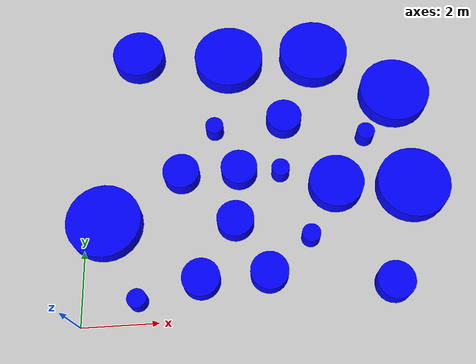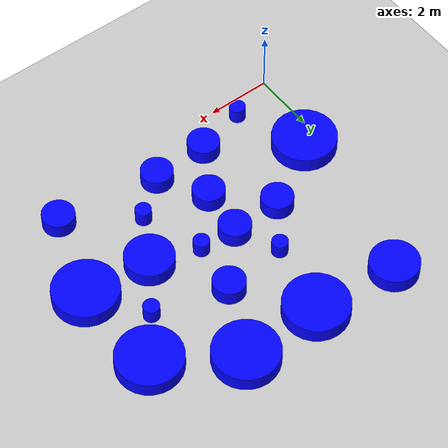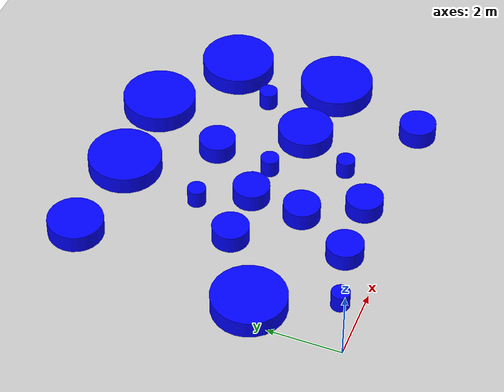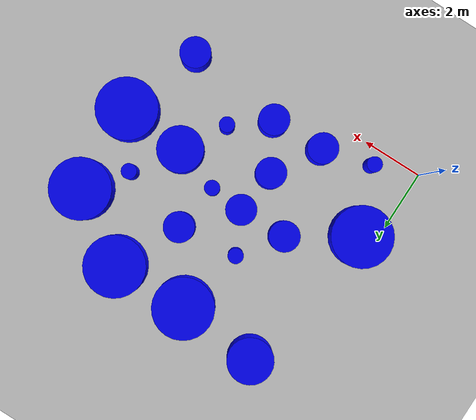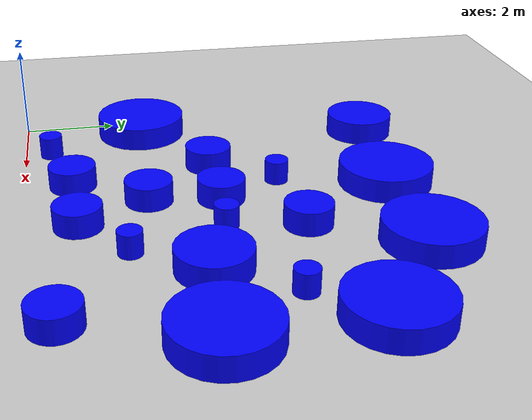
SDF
<sdf version="1.6">
 <world name="default">
  <light name="sun" type="directional">
   <pose>0 0 10 0 -0 0</pose>
   <diffuse>0.8 0.8 0.8 1</diffuse>
   <specular>0.2 0.2 0.2 1</specular>
   <attenuation>
    <range>1000</range>
    <constant>0.9</constant>
    <linear>0.01</linear>
    <quadratic>0.001</quadratic>
   </attenuation>
   <direction>-0.5 0.1 -0.9</direction>
  </light>
  <model name="ground_plane">
   <static>1</static>
   <link name="link">
    <collision name="collision">
     <geometry><plane><normal>0 0 1</normal><size>100 100</size></plane></geometry>
     <surface>
      <contact><collide_bitmask>65535</collide_bitmask></contact>
      <friction><ode><mu>100</mu><mu2>50</mu2></ode></friction>
     </surface>
    </collision>
    <visual name="visual">
     <cast_shadows>0</cast_shadows>
     <geometry><plane><normal>0 0 1</normal><size>100 100</size></plane></geometry>
     <material>
      <script><uri>file://media/materials/scripts/gazebo.material</uri><name>Gazebo/Grey</name></script>
     </material>
    </visual>
   </link>
  </model>
  <gravity>0 0 -9.8</gravity>
  <magnetic_field>6e-06 2.3e-05 -4.2e-05</magnetic_field>
  <atmosphere type="adiabatic"/>
  <physics name="default_physics" default="0" type="ode">
   <max_step_size>0.001</max_step_size>
   <real_time_factor>1</real_time_factor>
   <real_time_update_rate>1000</real_time_update_rate>
  </physics>
  <scene><ambient>0.4 0.4 0.4 1</ambient><background>0.7 0.7 0.7 1</background><shadows>1</shadows></scene>
  <audio><device>default</device></audio>
  <spherical_coordinates>
   <surface_model>EARTH_WGS84</surface_model>
   <latitude_deg>0</latitude_deg>
   <longitude_deg>0</longitude_deg>
   <elevation>0</elevation>
   <heading_deg>0</heading_deg>
  </spherical_coordinates>
  <model name="kwn_obs100">
   <link name="link">
    <inertial>
     <mass>1</mass>
     <inertia><ixx>0.145833</ixx><ixy>0</ixy><ixz>0</ixz><iyy>0.145833</iyy><iyz>0</iyz><izz>0.125</izz></inertia>
    </inertial>
    <visual name="visual">
     <geometry><cylinder><radius>1</radius><length>0.5</length></cylinder></geometry>
     <material>
      <script><name>Gazebo/Grey</name><uri>file://media/materials/scripts/gazebo.material</uri></script>
      <shader type="vertex"><normal_map>__default__</normal_map></shader>
      <ambient>0 0 1 1</ambient>
      <diffuse>0.7 0.7 0.7 1</diffuse>
      <specular>0.01 0.01 0.01 1</specular>
      <emissive>0 0 0 1</emissive>
     </material>
     <pose>0 0 0.25 0 -0 0</pose>
    </visual>
    <collision name="collision">
     <pose>0 0 0.25 0 -0 0</pose>
     <geometry><cylinder><radius>1</radius><length>0.5</length></cylinder></geometry>
     <surface>
      <friction>
       <ode><mu>1</mu><mu2>1</mu2><fdir1>0 0 0</fdir1><slip1>0</slip1><slip2>0</slip2></ode>
       <torsional>
        <coefficient>1</coefficient>
        <patch_radius>0</patch_radius>
        <surface_radius>0</surface_radius>
        <use_patch_radius>1</use_patch_radius>
        <ode><slip>0</slip></ode>
       </torsional>
      </friction>
      <bounce><restitution_coefficient>0</restitution_coefficient><threshold>1e+06</threshold></bounce>
      <contact>
       <collide_without_contact>0</collide_without_contact>
       <collide_without_contact_bitmask>1</collide_without_contact_bitmask>
       <collide_bitmask>1</collide_bitmask>
       <ode>
        <soft_cfm>0</soft_cfm>
        <soft_erp>0.2</soft_erp>
        <kp>1e+13</kp>
        <kd>1</kd>
        <max_vel>0.01</max_vel>
        <min_depth>0</min_depth>
       </ode>
       <bullet>
        <split_impulse>1</split_impulse>
        <split_impulse_penetration_threshold>-0.01</split_impulse_penetration_threshold>
        <soft_cfm>0</soft_cfm>
        <soft_erp>0.2</soft_erp>
        <kp>1e+13</kp>
        <kd>1</kd>
       </bullet>
      </contact>
     </surface>
    </collision>
   </link>
   <static>1</static>
   <pose>0.56066 2.68798 0 0 -0 0</pose>
  </model>
  <model name="kwn_obs50">
   <link name="link">
    <inertial>
     <mass>1</mass>
     <inertia><ixx>0.145833</ixx><ixy>0</ixy><ixz>0</ixz><iyy>0.145833</iyy><iyz>0</iyz><izz>0.125</izz></inertia>
    </inertial>
    <visual name="visual">
     <geometry><cylinder><radius>0.5</radius><length>0.5</length></cylinder></geometry>
     <material>
      <script><name>Gazebo/Grey</name><uri>file://media/materials/scripts/gazebo.material</uri></script>
      <shader type="vertex"><normal_map>__default__</normal_map></shader>
      <ambient>0 0 1 1</ambient>
      <diffuse>0.7 0.7 0.7 1</diffuse>
      <specular>0.01 0.01 0.01 1</specular>
      <emissive>0 0 0 1</emissive>
     </material>
     <pose>0 0 0.25 0 -0 0</pose>
    </visual>
    <collision name="collision">
     <pose>0 0 0.25 0 -0 0</pose>
     <geometry><cylinder><radius>0.5</radius><length>0.5</length></cylinder></geometry>
     <surface>
      <friction>
       <ode><mu>1</mu><mu2>1</mu2><fdir1>0 0 0</fdir1><slip1>0</slip1><slip2>0</slip2></ode>
       <torsional>
        <coefficient>1</coefficient>
        <patch_radius>0</patch_radius>
        <surface_radius>0</surface_radius>
        <use_patch_radius>1</use_patch_radius>
        <ode><slip>0</slip></ode>
       </torsional>
      </friction>
      <bounce><restitution_coefficient>0</restitution_coefficient><threshold>1e+06</threshold></bounce>
      <contact>
       <collide_without_contact>0</collide_without_contact>
       <collide_without_contact_bitmask>1</collide_without_contact_bitmask>
       <collide_bitmask>1</collide_bitmask>
       <ode>
        <soft_cfm>0</soft_cfm>
        <soft_erp>0.2</soft_erp>
        <kp>1e+13</kp>
        <kd>1</kd>
        <max_vel>0.01</max_vel>
        <min_depth>0</min_depth>
       </ode>
       <bullet>
        <split_impulse>1</split_impulse>
        <split_impulse_penetration_threshold>-0.01</split_impulse_penetration_threshold>
        <soft_cfm>0</soft_cfm>
        <soft_erp>0.2</soft_erp>
        <kp>1e+13</kp>
        <kd>1</kd>
       </bullet>
      </contact>
     </surface>
    </collision>
   </link>
   <static>1</static>
   <pose>3.0979 1.02126 0 0 -0 0</pose>
  </model>
  <model name="kwn_obs50_0">
   <link name="link">
    <inertial>
     <mass>1</mass>
     <inertia><ixx>0.145833</ixx><ixy>0</ixy><ixz>0</ixz><iyy>0.145833</iyy><iyz>0</iyz><izz>0.125</izz></inertia>
    </inertial>
    <visual name="visual">
     <geometry><cylinder><radius>0.5</radius><length>0.5</length></cylinder></geometry>
     <material>
      <script><name>Gazebo/Grey</name><uri>file://media/materials/scripts/gazebo.material</uri></script>
      <shader type="vertex"><normal_map>__default__</normal_map></shader>
      <ambient>0 0 1 1</ambient>
      <diffuse>0.7 0.7 0.7 1</diffuse>
      <specular>0.01 0.01 0.01 1</specular>
      <emissive>0 0 0 1</emissive>
     </material>
     <pose>0 0 0.25 0 -0 0</pose>
    </visual>
    <collision name="collision">
     <pose>0 0 0.25 0 -0 0</pose>
     <geometry><cylinder><radius>0.5</radius><length>0.5</length></cylinder></geometry>
     <surface>
      <friction>
       <ode><mu>1</mu><mu2>1</mu2><fdir1>0 0 0</fdir1><slip1>0</slip1><slip2>0</slip2></ode>
       <torsional>
        <coefficient>1</coefficient>
        <patch_radius>0</patch_radius>
        <surface_radius>0</surface_radius>
        <use_patch_radius>1</use_patch_radius>
        <ode><slip>0</slip></ode>
       </torsional>
      </friction>
      <bounce><restitution_coefficient>0</restitution_coefficient><threshold>1e+06</threshold></bounce>
      <contact>
       <collide_without_contact>0</collide_without_contact>
       <collide_without_contact_bitmask>1</collide_without_contact_bitmask>
       <collide_bitmask>1</collide_bitmask>
       <ode>
        <soft_cfm>0</soft_cfm>
        <soft_erp>0.2</soft_erp>
        <kp>1e+13</kp>
        <kd>1</kd>
        <max_vel>0.01</max_vel>
        <min_depth>0</min_depth>
       </ode>
       <bullet>
        <split_impulse>1</split_impulse>
        <split_impulse_penetration_threshold>-0.01</split_impulse_penetration_threshold>
        <soft_cfm>0</soft_cfm>
        <soft_erp>0.2</soft_erp>
        <kp>1e+13</kp>
        <kd>1</kd>
       </bullet>
      </contact>
     </surface>
    </collision>
   </link>
   <static>1</static>
   <pose>2.62373 3.99694 0 0 -0 0</pose>
  </model>
  <model name="kwn_obs25">
   <link name="link">
    <inertial>
     <mass>1</mass>
     <inertia><ixx>0.145833</ixx><ixy>0</ixy><ixz>0</ixz><iyy>0.145833</iyy><iyz>0</iyz><izz>0.125</izz></inertia>
    </inertial>
    <visual name="visual">
     <geometry><cylinder><radius>0.25</radius><length>0.5</length></cylinder></geometry>
     <material>
      <script><name>Gazebo/Grey</name><uri>file://media/materials/scripts/gazebo.material</uri></script>
      <shader type="vertex"><normal_map>__default__</normal_map></shader>
      <ambient>0 0 1 1</ambient>
      <diffuse>0.7 0.7 0.7 1</diffuse>
      <specular>0.01 0.01 0.01 1</specular>
      <emissive>0 0 0 1</emissive>
     </material>
     <pose>0 0 0.25 0 -0 0</pose>
    </visual>
    <collision name="collision">
     <pose>0 0 0.25 0 -0 0</pose>
     <geometry><cylinder><radius>0.25</radius><length>0.5</length></cylinder></geometry>
     <surface>
      <friction>
       <ode><mu>1</mu><mu2>1</mu2><fdir1>0 0 0</fdir1><slip1>0</slip1><slip2>0</slip2></ode>
       <torsional>
        <coefficient>1</coefficient>
        <patch_radius>0</patch_radius>
        <surface_radius>0</surface_radius>
        <use_patch_radius>1</use_patch_radius>
        <ode><slip>0</slip></ode>
       </torsional>
      </friction>
      <bounce><restitution_coefficient>0</restitution_coefficient><threshold>1e+06</threshold></bounce>
      <contact>
       <collide_without_contact>0</collide_without_contact>
       <collide_without_contact_bitmask>1</collide_without_contact_bitmask>
       <collide_bitmask>1</collide_bitmask>
       <ode>
        <soft_cfm>0</soft_cfm>
        <soft_erp>0.2</soft_erp>
        <kp>1e+13</kp>
        <kd>1</kd>
        <max_vel>0.01</max_vel>
        <min_depth>0</min_depth>
       </ode>
       <bullet>
        <split_impulse>1</split_impulse>
        <split_impulse_penetration_threshold>-0.01</split_impulse_penetration_threshold>
        <soft_cfm>0</soft_cfm>
        <soft_erp>0.2</soft_erp>
        <kp>1e+13</kp>
        <kd>1</kd>
       </bullet>
      </contact>
     </surface>
    </collision>
   </link>
   <static>1</static>
   <pose>1.47036 0.57288 0 0 -0 0</pose>
  </model>
  <model name="kwn_obs75">
   <link name="link">
    <inertial>
     <mass>1</mass>
     <inertia><ixx>0.145833</ixx><ixy>0</ixy><ixz>0</ixz><iyy>0.145833</iyy><iyz>0</iyz><izz>0.125</izz></inertia>
    </inertial>
    <visual name="visual">
     <geometry><cylinder><radius>0.75</radius><length>0.5</length></cylinder></geometry>
     <material>
      <script><name>Gazebo/Grey</name><uri>file://media/materials/scripts/gazebo.material</uri></script>
      <shader type="vertex"><normal_map>__default__</normal_map></shader>
      <ambient>0 0 1 1</ambient>
      <diffuse>0.7 0.7 0.7 1</diffuse>
      <specular>0.01 0.01 0.01 1</specular>
      <emissive>0 0 0 1</emissive>
     </material>
     <pose>0 0 0.25 0 -0 0</pose>
    </visual>
    <collision name="collision">
     <pose>0 0 0.25 0 -0 0</pose>
     <geometry><cylinder><radius>0.75</radius><length>0.5</length></cylinder></geometry>
     <surface>
      <friction>
       <ode><mu>1</mu><mu2>1</mu2><fdir1>0 0 0</fdir1><slip1>0</slip1><slip2>0</slip2></ode>
       <torsional>
        <coefficient>1</coefficient>
        <patch_radius>0</patch_radius>
        <surface_radius>0</surface_radius>
        <use_patch_radius>1</use_patch_radius>
        <ode><slip>0</slip></ode>
       </torsional>
      </friction>
      <bounce><restitution_coefficient>0</restitution_coefficient><threshold>1e+06</threshold></bounce>
      <contact>
       <collide_without_contact>0</collide_without_contact>
       <collide_without_contact_bitmask>1</collide_without_contact_bitmask>
       <collide_bitmask>1</collide_bitmask>
       <ode>
        <soft_cfm>0</soft_cfm>
        <soft_erp>0.2</soft_erp>
        <kp>1e+13</kp>
        <kd>1</kd>
        <max_vel>0.01</max_vel>
        <min_depth>0</min_depth>
       </ode>
       <bullet>
        <split_impulse>1</split_impulse>
        <split_impulse_penetration_threshold>-0.01</split_impulse_penetration_threshold>
        <soft_cfm>0</soft_cfm>
        <soft_erp>0.2</soft_erp>
        <kp>1e+13</kp>
        <kd>1</kd>
       </bullet>
      </contact>
     </surface>
    </collision>
   </link>
   <static>1</static>
   <pose>1.41249 7.85595 0 0 -0 0</pose>
  </model>
  <model name="kwn_obs50_1">
   <link name="link">
    <inertial>
     <mass>1</mass>
     <inertia><ixx>0.145833</ixx><ixy>0</ixy><ixz>0</ixz><iyy>0.145833</iyy><iyz>0</iyz><izz>0.125</izz></inertia>
    </inertial>
    <visual name="visual">
     <geometry><cylinder><radius>0.5</radius><length>0.5</length></cylinder></geometry>
     <material>
      <script><name>Gazebo/Grey</name><uri>file://media/materials/scripts/gazebo.material</uri></script>
      <shader type="vertex"><normal_map>__default__</normal_map></shader>
      <ambient>0 0 1 1</ambient>
      <diffuse>0.7 0.7 0.7 1</diffuse>
      <specular>0.01 0.01 0.01 1</specular>
      <emissive>0 0 0 1</emissive>
     </material>
     <pose>0 0 0.25 0 -0 0</pose>
    </visual>
    <collision name="collision">
     <pose>0 0 0.25 0 -0 0</pose>
     <geometry><cylinder><radius>0.5</radius><length>0.5</length></cylinder></geometry>
     <surface>
      <friction>
       <ode><mu>1</mu><mu2>1</mu2><fdir1>0 0 0</fdir1><slip1>0</slip1><slip2>0</slip2></ode>
       <torsional>
        <coefficient>1</coefficient>
        <patch_radius>0</patch_radius>
        <surface_radius>0</surface_radius>
        <use_patch_radius>1</use_patch_radius>
        <ode><slip>0</slip></ode>
       </torsional>
      </friction>
      <bounce><restitution_coefficient>0</restitution_coefficient><threshold>1e+06</threshold></bounce>
      <contact>
       <collide_without_contact>0</collide_without_contact>
       <collide_without_contact_bitmask>1</collide_without_contact_bitmask>
       <collide_bitmask>1</collide_bitmask>
       <ode>
        <soft_cfm>0</soft_cfm>
        <soft_erp>0.2</soft_erp>
        <kp>1e+13</kp>
        <kd>1</kd>
        <max_vel>0.01</max_vel>
        <min_depth>0</min_depth>
       </ode>
       <bullet>
        <split_impulse>1</split_impulse>
        <split_impulse_penetration_threshold>-0.01</split_impulse_penetration_threshold>
        <soft_cfm>0</soft_cfm>
        <soft_erp>0.2</soft_erp>
        <kp>1e+13</kp>
        <kd>1</kd>
       </bullet>
      </contact>
     </surface>
    </collision>
   </link>
   <static>1</static>
   <pose>4.04913 2.55073 0 0 -0 0</pose>
  </model>
  <model name="kwn_obs25_0">
   <link name="link">
    <inertial>
     <mass>1</mass>
     <inertia><ixx>0.145833</ixx><ixy>0</ixy><ixz>0</ixz><iyy>0.145833</iyy><iyz>0</iyz><izz>0.125</izz></inertia>
    </inertial>
    <visual name="visual">
     <geometry><cylinder><radius>0.25</radius><length>0.5</length></cylinder></geometry>
     <material>
      <script><name>Gazebo/Grey</name><uri>file://media/materials/scripts/gazebo.material</uri></script>
      <shader type="vertex"><normal_map>__default__</normal_map></shader>
      <ambient>0 0 1 1</ambient>
      <diffuse>0.7 0.7 0.7 1</diffuse>
      <specular>0.01 0.01 0.01 1</specular>
      <emissive>0 0 0 1</emissive>
     </material>
     <pose>0 0 0.25 0 -0 0</pose>
    </visual>
    <collision name="collision">
     <pose>0 0 0.25 0 -0 0</pose>
     <geometry><cylinder><radius>0.25</radius><length>0.5</length></cylinder></geometry>
     <surface>
      <friction>
       <ode><mu>1</mu><mu2>1</mu2><fdir1>0 0 0</fdir1><slip1>0</slip1><slip2>0</slip2></ode>
       <torsional>
        <coefficient>1</coefficient>
        <patch_radius>0</patch_radius>
        <surface_radius>0</surface_radius>
        <use_patch_radius>1</use_patch_radius>
        <ode><slip>0</slip></ode>
       </torsional>
      </friction>
      <bounce><restitution_coefficient>0</restitution_coefficient><threshold>1e+06</threshold></bounce>
      <contact>
       <collide_without_contact>0</collide_without_contact>
       <collide_without_contact_bitmask>1</collide_without_contact_bitmask>
       <collide_bitmask>1</collide_bitmask>
       <ode>
        <soft_cfm>0</soft_cfm>
        <soft_erp>0.2</soft_erp>
        <kp>1e+13</kp>
        <kd>1</kd>
        <max_vel>0.01</max_vel>
        <min_depth>0</min_depth>
       </ode>
       <bullet>
        <split_impulse>1</split_impulse>
        <split_impulse_penetration_threshold>-0.01</split_impulse_penetration_threshold>
        <soft_cfm>0</soft_cfm>
        <soft_erp>0.2</soft_erp>
        <kp>1e+13</kp>
        <kd>1</kd>
       </bullet>
      </contact>
     </surface>
    </collision>
   </link>
   <static>1</static>
   <pose>3.58 5.33523 0 0 -0 0</pose>
  </model>
  <model name="kwn_obs50_2">
   <link name="link">
    <inertial>
     <mass>1</mass>
     <inertia><ixx>0.145833</ixx><ixy>0</ixy><ixz>0</ixz><iyy>0.145833</iyy><iyz>0</iyz><izz>0.125</izz></inertia>
    </inertial>
    <visual name="visual">
     <geometry><cylinder><radius>0.5</radius><length>0.5</length></cylinder></geometry>
     <material>
      <script><name>Gazebo/Grey</name><uri>file://media/materials/scripts/gazebo.material</uri></script>
      <shader type="vertex"><normal_map>__default__</normal_map></shader>
      <ambient>0 0 1 1</ambient>
      <diffuse>0.7 0.7 0.7 1</diffuse>
      <specular>0.01 0.01 0.01 1</specular>
      <emissive>0 0 0 1</emissive>
     </material>
     <pose>0 0 0.25 0 -0 0</pose>
    </visual>
    <collision name="collision">
     <pose>0 0 0.25 0 -0 0</pose>
     <geometry><cylinder><radius>0.5</radius><length>0.5</length></cylinder></geometry>
     <surface>
      <friction>
       <ode><mu>1</mu><mu2>1</mu2><fdir1>0 0 0</fdir1><slip1>0</slip1><slip2>0</slip2></ode>
       <torsional>
        <coefficient>1</coefficient>
        <patch_radius>0</patch_radius>
        <surface_radius>0</surface_radius>
        <use_patch_radius>1</use_patch_radius>
        <ode><slip>0</slip></ode>
       </torsional>
      </friction>
      <bounce><restitution_coefficient>0</restitution_coefficient><threshold>1e+06</threshold></bounce>
      <contact>
       <collide_without_contact>0</collide_without_contact>
       <collide_without_contact_bitmask>1</collide_without_contact_bitmask>
       <collide_bitmask>1</collide_bitmask>
       <ode>
        <soft_cfm>0</soft_cfm>
        <soft_erp>0.2</soft_erp>
        <kp>1e+13</kp>
        <kd>1</kd>
        <max_vel>0.01</max_vel>
        <min_depth>0</min_depth>
       </ode>
       <bullet>
        <split_impulse>1</split_impulse>
        <split_impulse_penetration_threshold>-0.01</split_impulse_penetration_threshold>
        <soft_cfm>0</soft_cfm>
        <soft_erp>0.2</soft_erp>
        <kp>1e+13</kp>
        <kd>1</kd>
       </bullet>
      </contact>
     </surface>
    </collision>
   </link>
   <static>1</static>
   <pose>4.86868 1.09311 0 0 -0 0</pose>
  </model>
  <model name="kwn_obs25_1">
   <link name="link">
    <inertial>
     <mass>1</mass>
     <inertia><ixx>0.145833</ixx><ixy>0</ixy><ixz>0</ixz><iyy>0.145833</iyy><iyz>0</iyz><izz>0.125</izz></inertia>
    </inertial>
    <visual name="visual">
     <geometry><cylinder><radius>0.25</radius><length>0.5</length></cylinder></geometry>
     <material>
      <script><name>Gazebo/Grey</name><uri>file://media/materials/scripts/gazebo.material</uri></script>
      <shader type="vertex"><normal_map>__default__</normal_map></shader>
      <ambient>0 0 1 1</ambient>
      <diffuse>0.7 0.7 0.7 1</diffuse>
      <specular>0.01 0.01 0.01 1</specular>
      <emissive>0 0 0 1</emissive>
     </material>
     <pose>0 0 0.25 0 -0 0</pose>
    </visual>
    <collision name="collision">
     <pose>0 0 0.25 0 -0 0</pose>
     <geometry><cylinder><radius>0.25</radius><length>0.5</length></cylinder></geometry>
     <surface>
      <friction>
       <ode><mu>1</mu><mu2>1</mu2><fdir1>0 0 0</fdir1><slip1>0</slip1><slip2>0</slip2></ode>
       <torsional>
        <coefficient>1</coefficient>
        <patch_radius>0</patch_radius>
        <surface_radius>0</surface_radius>
        <use_patch_radius>1</use_patch_radius>
        <ode><slip>0</slip></ode>
       </torsional>
      </friction>
      <bounce><restitution_coefficient>0</restitution_coefficient><threshold>1e+06</threshold></bounce>
      <contact>
       <collide_without_contact>0</collide_without_contact>
       <collide_without_contact_bitmask>1</collide_without_contact_bitmask>
       <collide_bitmask>1</collide_bitmask>
       <ode>
        <soft_cfm>0</soft_cfm>
        <soft_erp>0.2</soft_erp>
        <kp>1e+13</kp>
        <kd>1</kd>
        <max_vel>0.01</max_vel>
        <min_depth>0</min_depth>
       </ode>
       <bullet>
        <split_impulse>1</split_impulse>
        <split_impulse_penetration_threshold>-0.01</split_impulse_penetration_threshold>
        <soft_cfm>0</soft_cfm>
        <soft_erp>0.2</soft_erp>
        <kp>1e+13</kp>
        <kd>1</kd>
       </bullet>
      </contact>
     </surface>
    </collision>
   </link>
   <static>1</static>
   <pose>5.35428 3.94193 0 0 -0 0</pose>
  </model>
  <model name="kwn_obs100_0">
   <link name="link">
    <inertial>
     <mass>1</mass>
     <inertia><ixx>0.145833</ixx><ixy>0</ixy><ixz>0</ixz><iyy>0.145833</iyy><iyz>0</iyz><izz>0.125</izz></inertia>
    </inertial>
    <visual name="visual">
     <geometry><cylinder><radius>1</radius><length>0.5</length></cylinder></geometry>
     <material>
      <script><name>Gazebo/Grey</name><uri>file://media/materials/scripts/gazebo.material</uri></script>
      <shader type="vertex"><normal_map>__default__</normal_map></shader>
      <ambient>0 0 1 1</ambient>
      <diffuse>0.7 0.7 0.7 1</diffuse>
      <specular>0.01 0.01 0.01 1</specular>
      <emissive>0 0 0 1</emissive>
     </material>
     <pose>0 0 0.25 0 -0 0</pose>
    </visual>
    <collision name="collision">
     <pose>0 0 0.25 0 -0 0</pose>
     <geometry><cylinder><radius>1</radius><length>0.5</length></cylinder></geometry>
     <surface>
      <friction>
       <ode><mu>1</mu><mu2>1</mu2><fdir1>0 0 0</fdir1><slip1>0</slip1><slip2>0</slip2></ode>
       <torsional>
        <coefficient>1</coefficient>
        <patch_radius>0</patch_radius>
        <surface_radius>0</surface_radius>
        <use_patch_radius>1</use_patch_radius>
        <ode><slip>0</slip></ode>
       </torsional>
      </friction>
      <bounce><restitution_coefficient>0</restitution_coefficient><threshold>1e+06</threshold></bounce>
      <contact>
       <collide_without_contact>0</collide_without_contact>
       <collide_without_contact_bitmask>1</collide_without_contact_bitmask>
       <collide_bitmask>1</collide_bitmask>
       <ode>
        <soft_cfm>0</soft_cfm>
        <soft_erp>0.2</soft_erp>
        <kp>1e+13</kp>
        <kd>1</kd>
        <max_vel>0.01</max_vel>
        <min_depth>0</min_depth>
       </ode>
       <bullet>
        <split_impulse>1</split_impulse>
        <split_impulse_penetration_threshold>-0.01</split_impulse_penetration_threshold>
        <soft_cfm>0</soft_cfm>
        <soft_erp>0.2</soft_erp>
        <kp>1e+13</kp>
        <kd>1</kd>
       </bullet>
      </contact>
     </surface>
    </collision>
   </link>
   <static>1</static>
   <pose>4.07177 7.61204 0 0 -0 0</pose>
  </model>
  <model name="kwn_obs25_2">
   <link name="link">
    <inertial>
     <mass>1</mass>
     <inertia><ixx>0.145833</ixx><ixy>0</ixy><ixz>0</ixz><iyy>0.145833</iyy><iyz>0</iyz><izz>0.125</izz></inertia>
    </inertial>
    <visual name="visual">
     <geometry><cylinder><radius>0.25</radius><length>0.5</length></cylinder></geometry>
     <material>
      <script><name>Gazebo/Grey</name><uri>file://media/materials/scripts/gazebo.material</uri></script>
      <shader type="vertex"><normal_map>__default__</normal_map></shader>
      <ambient>0 0 1 1</ambient>
      <diffuse>0.7 0.7 0.7 1</diffuse>
      <specular>0.01 0.01 0.01 1</specular>
      <emissive>0 0 0 1</emissive>
     </material>
     <pose>0 0 0.25 0 -0 0</pose>
    </visual>
    <collision name="collision">
     <pose>0 0 0.25 0 -0 0</pose>
     <geometry><cylinder><radius>0.25</radius><length>0.5</length></cylinder></geometry>
     <surface>
      <friction>
       <ode><mu>1</mu><mu2>1</mu2><fdir1>0 0 0</fdir1><slip1>0</slip1><slip2>0</slip2></ode>
       <torsional>
        <coefficient>1</coefficient>
        <patch_radius>0</patch_radius>
        <surface_radius>0</surface_radius>
        <use_patch_radius>1</use_patch_radius>
        <ode><slip>0</slip></ode>
       </torsional>
      </friction>
      <bounce><restitution_coefficient>0</restitution_coefficient><threshold>1e+06</threshold></bounce>
      <contact>
       <collide_without_contact>0</collide_without_contact>
       <collide_without_contact_bitmask>1</collide_without_contact_bitmask>
       <collide_bitmask>1</collide_bitmask>
       <ode>
        <soft_cfm>0</soft_cfm>
        <soft_erp>0.2</soft_erp>
        <kp>1e+13</kp>
        <kd>1</kd>
        <max_vel>0.01</max_vel>
        <min_depth>0</min_depth>
       </ode>
       <bullet>
        <split_impulse>1</split_impulse>
        <split_impulse_penetration_threshold>-0.01</split_impulse_penetration_threshold>
        <soft_cfm>0</soft_cfm>
        <soft_erp>0.2</soft_erp>
        <kp>1e+13</kp>
        <kd>1</kd>
       </bullet>
      </contact>
     </surface>
    </collision>
   </link>
   <static>1</static>
   <pose>6.03111 2.02281 0 0 -0 0</pose>
  </model>
  <model name="kwn_obs75_0">
   <link name="link">
    <inertial>
     <mass>1</mass>
     <inertia><ixx>0.145833</ixx><ixy>0</ixy><ixz>0</ixz><iyy>0.145833</iyy><iyz>0</iyz><izz>0.125</izz></inertia>
    </inertial>
    <visual name="visual">
     <geometry><cylinder><radius>0.75</radius><length>0.5</length></cylinder></geometry>
     <material>
      <script><name>Gazebo/Grey</name><uri>file://media/materials/scripts/gazebo.material</uri></script>
      <shader type="vertex"><normal_map>__default__</normal_map></shader>
      <ambient>0 0 1 1</ambient>
      <diffuse>0.7 0.7 0.7 1</diffuse>
      <specular>0.01 0.01 0.01 1</specular>
      <emissive>0 0 0 1</emissive>
     </material>
     <pose>0 0 0.25 0 -0 0</pose>
    </visual>
    <collision name="collision">
     <pose>0 0 0.25 0 -0 0</pose>
     <geometry><cylinder><radius>0.75</radius><length>0.5</length></cylinder></geometry>
     <surface>
      <friction>
       <ode><mu>1</mu><mu2>1</mu2><fdir1>0 0 0</fdir1><slip1>0</slip1><slip2>0</slip2></ode>
       <torsional>
        <coefficient>1</coefficient>
        <patch_radius>0</patch_radius>
        <surface_radius>0</surface_radius>
        <use_patch_radius>1</use_patch_radius>
        <ode><slip>0</slip></ode>
       </torsional>
      </friction>
      <bounce><restitution_coefficient>0</restitution_coefficient><threshold>1e+06</threshold></bounce>
      <contact>
       <collide_without_contact>0</collide_without_contact>
       <collide_without_contact_bitmask>1</collide_without_contact_bitmask>
       <collide_bitmask>1</collide_bitmask>
       <ode>
        <soft_cfm>0</soft_cfm>
        <soft_erp>0.2</soft_erp>
        <kp>1e+13</kp>
        <kd>1</kd>
        <max_vel>0.01</max_vel>
        <min_depth>0</min_depth>
       </ode>
       <bullet>
        <split_impulse>1</split_impulse>
        <split_impulse_penetration_threshold>-0.01</split_impulse_penetration_threshold>
        <soft_cfm>0</soft_cfm>
        <soft_erp>0.2</soft_erp>
        <kp>1e+13</kp>
        <kd>1</kd>
       </bullet>
      </contact>
     </surface>
    </collision>
   </link>
   <static>1</static>
   <pose>6.84677 3.46274 0 0 -0 0</pose>
  </model>
  <model name="kwn_obs50_3">
   <link name="link">
    <inertial>
     <mass>1</mass>
     <inertia><ixx>0.145833</ixx><ixy>0</ixy><ixz>0</ixz><iyy>0.145833</iyy><iyz>0</iyz><izz>0.125</izz></inertia>
    </inertial>
    <visual name="visual">
     <geometry><cylinder><radius>0.5</radius><length>0.5</length></cylinder></geometry>
     <material>
      <script><name>Gazebo/Grey</name><uri>file://media/materials/scripts/gazebo.material</uri></script>
      <shader type="vertex"><normal_map>__default__</normal_map></shader>
      <ambient>0 0 1 1</ambient>
      <diffuse>0.7 0.7 0.7 1</diffuse>
      <specular>0.01 0.01 0.01 1</specular>
      <emissive>0 0 0 1</emissive>
     </material>
     <pose>0 0 0.25 0 -0 0</pose>
    </visual>
    <collision name="collision">
     <pose>0 0 0.25 0 -0 0</pose>
     <geometry><cylinder><radius>0.5</radius><length>0.5</length></cylinder></geometry>
     <surface>
      <friction>
       <ode><mu>1</mu><mu2>1</mu2><fdir1>0 0 0</fdir1><slip1>0</slip1><slip2>0</slip2></ode>
       <torsional>
        <coefficient>1</coefficient>
        <patch_radius>0</patch_radius>
        <surface_radius>0</surface_radius>
        <use_patch_radius>1</use_patch_radius>
        <ode><slip>0</slip></ode>
       </torsional>
      </friction>
      <bounce><restitution_coefficient>0</restitution_coefficient><threshold>1e+06</threshold></bounce>
      <contact>
       <collide_without_contact>0</collide_without_contact>
       <collide_without_contact_bitmask>1</collide_without_contact_bitmask>
       <collide_bitmask>1</collide_bitmask>
       <ode>
        <soft_cfm>0</soft_cfm>
        <soft_erp>0.2</soft_erp>
        <kp>1e+13</kp>
        <kd>1</kd>
        <max_vel>0.01</max_vel>
        <min_depth>0</min_depth>
       </ode>
       <bullet>
        <split_impulse>1</split_impulse>
        <split_impulse_penetration_threshold>-0.01</split_impulse_penetration_threshold>
        <soft_cfm>0</soft_cfm>
        <soft_erp>0.2</soft_erp>
        <kp>1e+13</kp>
        <kd>1</kd>
       </bullet>
      </contact>
     </surface>
    </collision>
   </link>
   <static>1</static>
   <pose>8.08408 0.657772 0 0 -0 0</pose>
  </model>
  <model name="kwn_obs50_4">
   <link name="link">
    <inertial>
     <mass>1</mass>
     <inertia><ixx>0.145833</ixx><ixy>0</ixy><ixz>0</ixz><iyy>0.145833</iyy><iyz>0</iyz><izz>0.125</izz></inertia>
    </inertial>
    <visual name="visual">
     <geometry><cylinder><radius>0.5</radius><length>0.5</length></cylinder></geometry>
     <material>
      <script><name>Gazebo/Grey</name><uri>file://media/materials/scripts/gazebo.material</uri></script>
      <shader type="vertex"><normal_map>__default__</normal_map></shader>
      <ambient>0 0 1 1</ambient>
      <diffuse>0.7 0.7 0.7 1</diffuse>
      <specular>0.01 0.01 0.01 1</specular>
      <emissive>0 0 0 1</emissive>
     </material>
     <pose>0 0 0.25 0 -0 0</pose>
    </visual>
    <collision name="collision">
     <pose>0 0 0.25 0 -0 0</pose>
     <geometry><cylinder><radius>0.5</radius><length>0.5</length></cylinder></geometry>
     <surface>
      <friction>
       <ode><mu>1</mu><mu2>1</mu2><fdir1>0 0 0</fdir1><slip1>0</slip1><slip2>0</slip2></ode>
       <torsional>
        <coefficient>1</coefficient>
        <patch_radius>0</patch_radius>
        <surface_radius>0</surface_radius>
        <use_patch_radius>1</use_patch_radius>
        <ode><slip>0</slip></ode>
       </torsional>
      </friction>
      <bounce><restitution_coefficient>0</restitution_coefficient><threshold>1e+06</threshold></bounce>
      <contact>
       <collide_without_contact>0</collide_without_contact>
       <collide_without_contact_bitmask>1</collide_without_contact_bitmask>
       <collide_bitmask>1</collide_bitmask>
       <ode>
        <soft_cfm>0</soft_cfm>
        <soft_erp>0.2</soft_erp>
        <kp>1e+13</kp>
        <kd>1</kd>
        <max_vel>0.01</max_vel>
        <min_depth>0</min_depth>
       </ode>
       <bullet>
        <split_impulse>1</split_impulse>
        <split_impulse_penetration_threshold>-0.01</split_impulse_penetration_threshold>
        <soft_cfm>0</soft_cfm>
        <soft_erp>0.2</soft_erp>
        <kp>1e+13</kp>
        <kd>1</kd>
       </bullet>
      </contact>
     </surface>
    </collision>
   </link>
   <static>1</static>
   <pose>5.56192 5.53623 0 0 -0 0</pose>
  </model>
  <model name="kwn_obs25_3">
   <link name="link">
    <inertial>
     <mass>1</mass>
     <inertia><ixx>0.145833</ixx><ixy>0</ixy><ixz>0</ixz><iyy>0.145833</iyy><iyz>0</iyz><izz>0.125</izz></inertia>
    </inertial>
    <visual name="visual">
     <geometry><cylinder><radius>0.25</radius><length>0.5</length></cylinder></geometry>
     <material>
      <script><name>Gazebo/Grey</name><uri>file://media/materials/scripts/gazebo.material</uri></script>
      <shader type="vertex"><normal_map>__default__</normal_map></shader>
      <ambient>0 0 1 1</ambient>
      <diffuse>0.7 0.7 0.7 1</diffuse>
      <specular>0.01 0.01 0.01 1</specular>
      <emissive>0 0 0 1</emissive>
     </material>
     <pose>0 0 0.25 0 -0 0</pose>
    </visual>
    <collision name="collision">
     <pose>0 0 0.25 0 -0 0</pose>
     <geometry><cylinder><radius>0.25</radius><length>0.5</length></cylinder></geometry>
     <surface>
      <friction>
       <ode><mu>1</mu><mu2>1</mu2><fdir1>0 0 0</fdir1><slip1>0</slip1><slip2>0</slip2></ode>
       <torsional>
        <coefficient>1</coefficient>
        <patch_radius>0</patch_radius>
        <surface_radius>0</surface_radius>
        <use_patch_radius>1</use_patch_radius>
        <ode><slip>0</slip></ode>
       </torsional>
      </friction>
      <bounce><restitution_coefficient>0</restitution_coefficient><threshold>1e+06</threshold></bounce>
      <contact>
       <collide_without_contact>0</collide_without_contact>
       <collide_without_contact_bitmask>1</collide_without_contact_bitmask>
       <collide_bitmask>1</collide_bitmask>
       <ode>
        <soft_cfm>0</soft_cfm>
        <soft_erp>0.2</soft_erp>
        <kp>1e+13</kp>
        <kd>1</kd>
        <max_vel>0.01</max_vel>
        <min_depth>0</min_depth>
       </ode>
       <bullet>
        <split_impulse>1</split_impulse>
        <split_impulse_penetration_threshold>-0.01</split_impulse_penetration_threshold>
        <soft_cfm>0</soft_cfm>
        <soft_erp>0.2</soft_erp>
        <kp>1e+13</kp>
        <kd>1</kd>
       </bullet>
      </contact>
     </surface>
    </collision>
   </link>
   <static>1</static>
   <pose>7.82362 4.91095 0 0 -0 0</pose>
  </model>
  <model name="kwn_obs50_5">
   <link name="link">
    <inertial>
     <mass>1</mass>
     <inertia><ixx>0.145833</ixx><ixy>0</ixy><ixz>0</ixz><iyy>0.145833</iyy><iyz>0</iyz><izz>0.125</izz></inertia>
    </inertial>
    <visual name="visual">
     <geometry><cylinder><radius>0.5</radius><length>0.5</length></cylinder></geometry>
     <material>
      <script><name>Gazebo/Grey</name><uri>file://media/materials/scripts/gazebo.material</uri></script>
      <shader type="vertex"><normal_map>__default__</normal_map></shader>
      <ambient>0 0 1 1</ambient>
      <diffuse>0.7 0.7 0.7 1</diffuse>
      <specular>0.01 0.01 0.01 1</specular>
      <emissive>0 0 0 1</emissive>
     </material>
     <pose>0 0 0.25 0 -0 0</pose>
    </visual>
    <collision name="collision">
     <pose>0 0 0.25 0 -0 0</pose>
     <geometry><cylinder><radius>0.5</radius><length>0.5</length></cylinder></geometry>
     <surface>
      <friction>
       <ode><mu>1</mu><mu2>1</mu2><fdir1>0 0 0</fdir1><slip1>0</slip1><slip2>0</slip2></ode>
       <torsional>
        <coefficient>1</coefficient>
        <patch_radius>0</patch_radius>
        <surface_radius>0</surface_radius>
        <use_patch_radius>1</use_patch_radius>
        <ode><slip>0</slip></ode>
       </torsional>
      </friction>
      <bounce><restitution_coefficient>0</restitution_coefficient><threshold>1e+06</threshold></bounce>
      <contact>
       <collide_without_contact>0</collide_without_contact>
       <collide_without_contact_bitmask>1</collide_without_contact_bitmask>
       <collide_bitmask>1</collide_bitmask>
       <ode>
        <soft_cfm>0</soft_cfm>
        <soft_erp>0.2</soft_erp>
        <kp>1e+13</kp>
        <kd>1</kd>
        <max_vel>0.01</max_vel>
        <min_depth>0</min_depth>
       </ode>
       <bullet>
        <split_impulse>1</split_impulse>
        <split_impulse_penetration_threshold>-0.01</split_impulse_penetration_threshold>
        <soft_cfm>0</soft_cfm>
        <soft_erp>0.2</soft_erp>
        <kp>1e+13</kp>
        <kd>1</kd>
       </bullet>
      </contact>
     </surface>
    </collision>
   </link>
   <static>1</static>
   <pose>4.21467 4.02782 0 0 -0 0</pose>
  </model>
  <model name="kwn_obs100_1">
   <link name="link">
    <inertial>
     <mass>1</mass>
     <inertia><ixx>0.145833</ixx><ixy>0</ixy><ixz>0</ixz><iyy>0.145833</iyy><iyz>0</iyz><izz>0.125</izz></inertia>
    </inertial>
    <visual name="visual">
     <geometry><cylinder><radius>1</radius><length>0.5</length></cylinder></geometry>
     <material>
      <script><name>Gazebo/Grey</name><uri>file://media/materials/scripts/gazebo.material</uri></script>
      <shader type="vertex"><normal_map>__default__</normal_map></shader>
      <ambient>0 0 1 1</ambient>
      <diffuse>0.7 0.7 0.7 1</diffuse>
      <specular>0.01 0.01 0.01 1</specular>
      <emissive>0 0 0 1</emissive>
     </material>
     <pose>0 0 0.25 0 -0 0</pose>
    </visual>
    <collision name="collision">
     <pose>0 0 0.25 0 -0 0</pose>
     <geometry><cylinder><radius>1</radius><length>0.5</length></cylinder></geometry>
     <surface>
      <friction>
       <ode><mu>1</mu><mu2>1</mu2><fdir1>0 0 0</fdir1><slip1>0</slip1><slip2>0</slip2></ode>
       <torsional>
        <coefficient>1</coefficient>
        <patch_radius>0</patch_radius>
        <surface_radius>0</surface_radius>
        <use_patch_radius>1</use_patch_radius>
        <ode><slip>0</slip></ode>
       </torsional>
      </friction>
      <bounce><restitution_coefficient>0</restitution_coefficient><threshold>1e+06</threshold></bounce>
      <contact>
       <collide_without_contact>0</collide_without_contact>
       <collide_without_contact_bitmask>1</collide_without_contact_bitmask>
       <collide_bitmask>1</collide_bitmask>
       <ode>
        <soft_cfm>0</soft_cfm>
        <soft_erp>0.2</soft_erp>
        <kp>1e+13</kp>
        <kd>1</kd>
        <max_vel>0.01</max_vel>
        <min_depth>0</min_depth>
       </ode>
       <bullet>
        <split_impulse>1</split_impulse>
        <split_impulse_penetration_threshold>-0.01</split_impulse_penetration_threshold>
        <soft_cfm>0</soft_cfm>
        <soft_erp>0.2</soft_erp>
        <kp>1e+13</kp>
        <kd>1</kd>
       </bullet>
      </contact>
     </surface>
    </collision>
   </link>
   <static>1</static>
   <pose>6.59419 7.66744 0 0 -0 0</pose>
  </model>
  <model name="kwn_obs100_2">
   <link name="link">
    <inertial>
     <mass>1</mass>
     <inertia><ixx>0.145833</ixx><ixy>0</ixy><ixz>0</ixz><iyy>0.145833</iyy><iyz>0</iyz><izz>0.125</izz></inertia>
    </inertial>
    <visual name="visual">
     <geometry><cylinder><radius>1</radius><length>0.5</length></cylinder></geometry>
     <material>
      <script><name>Gazebo/Grey</name><uri>file://media/materials/scripts/gazebo.material</uri></script>
      <shader type="vertex"><normal_map>__default__</normal_map></shader>
      <ambient>0 0 1 1</ambient>
      <diffuse>0.7 0.7 0.7 1</diffuse>
      <specular>0.01 0.01 0.01 1</specular>
      <emissive>0 0 0 1</emissive>
     </material>
     <pose>0 0 0.25 0 -0 0</pose>
    </visual>
    <collision name="collision">
     <pose>0 0 0.25 0 -0 0</pose>
     <geometry><cylinder><radius>1</radius><length>0.5</length></cylinder></geometry>
     <surface>
      <friction>
       <ode><mu>1</mu><mu2>1</mu2><fdir1>0 0 0</fdir1><slip1>0</slip1><slip2>0</slip2></ode>
       <torsional>
        <coefficient>1</coefficient>
        <patch_radius>0</patch_radius>
        <surface_radius>0</surface_radius>
        <use_patch_radius>1</use_patch_radius>
        <ode><slip>0</slip></ode>
       </torsional>
      </friction>
      <bounce><restitution_coefficient>0</restitution_coefficient><threshold>1e+06</threshold></bounce>
      <contact>
       <collide_without_contact>0</collide_without_contact>
       <collide_without_contact_bitmask>1</collide_without_contact_bitmask>
       <collide_bitmask>1</collide_bitmask>
       <ode>
        <soft_cfm>0</soft_cfm>
        <soft_erp>0.2</soft_erp>
        <kp>1e+13</kp>
        <kd>1</kd>
        <max_vel>0.01</max_vel>
        <min_depth>0</min_depth>
       </ode>
       <bullet>
        <split_impulse>1</split_impulse>
        <split_impulse_penetration_threshold>-0.01</split_impulse_penetration_threshold>
        <soft_cfm>0</soft_cfm>
        <soft_erp>0.2</soft_erp>
        <kp>1e+13</kp>
        <kd>1</kd>
       </bullet>
      </contact>
     </surface>
    </collision>
   </link>
   <static>1</static>
   <pose>8.81598 6.19776 0 0 -0 0</pose>
  </model>
  <model name="kwn_obs100_3">
   <link name="link">
    <inertial>
     <mass>1</mass>
     <inertia><ixx>0.145833</ixx><ixy>0</ixy><ixz>0</ixz><iyy>0.145833</iyy><iyz>0</iyz><izz>0.125</izz></inertia>
    </inertial>
    <visual name="visual">
     <geometry><cylinder><radius>1</radius><length>0.5</length></cylinder></geometry>
     <material>
      <script><name>Gazebo/Grey</name><uri>file://media/materials/scripts/gazebo.material</uri></script>
      <shader type="vertex"><normal_map>__default__</normal_map></shader>
      <ambient>0 0 1 1</ambient>
      <diffuse>0.7 0.7 0.7 1</diffuse>
      <specular>0.01 0.01 0.01 1</specular>
      <emissive>0 0 0 1</emissive>
     </material>
     <pose>0 0 0.25 0 -0 0</pose>
    </visual>
    <collision name="collision">
     <pose>0 0 0.25 0 -0 0</pose>
     <geometry><cylinder><radius>1</radius><length>0.5</length></cylinder></geometry>
     <surface>
      <friction>
       <ode><mu>1</mu><mu2>1</mu2><fdir1>0 0 0</fdir1><slip1>0</slip1><slip2>0</slip2></ode>
       <torsional>
        <coefficient>1</coefficient>
        <patch_radius>0</patch_radius>
        <surface_radius>0</surface_radius>
        <use_patch_radius>1</use_patch_radius>
        <ode><slip>0</slip></ode>
       </torsional>
      </friction>
      <bounce><restitution_coefficient>0</restitution_coefficient><threshold>1e+06</threshold></bounce>
      <contact>
       <collide_without_contact>0</collide_without_contact>
       <collide_without_contact_bitmask>1</collide_without_contact_bitmask>
       <collide_bitmask>1</collide_bitmask>
       <ode>
        <soft_cfm>0</soft_cfm>
        <soft_erp>0.2</soft_erp>
        <kp>1e+13</kp>
        <kd>1</kd>
        <max_vel>0.01</max_vel>
        <min_depth>0</min_depth>
       </ode>
       <bullet>
        <split_impulse>1</split_impulse>
        <split_impulse_penetration_threshold>-0.01</split_impulse_penetration_threshold>
        <soft_cfm>0</soft_cfm>
        <soft_erp>0.2</soft_erp>
        <kp>1e+13</kp>
        <kd>1</kd>
       </bullet>
      </contact>
     </surface>
    </collision>
   </link>
   <static>1</static>
   <pose>8.94276 3.2998 0 0 -0 0</pose>
  </model>
 </world>
</sdf>
